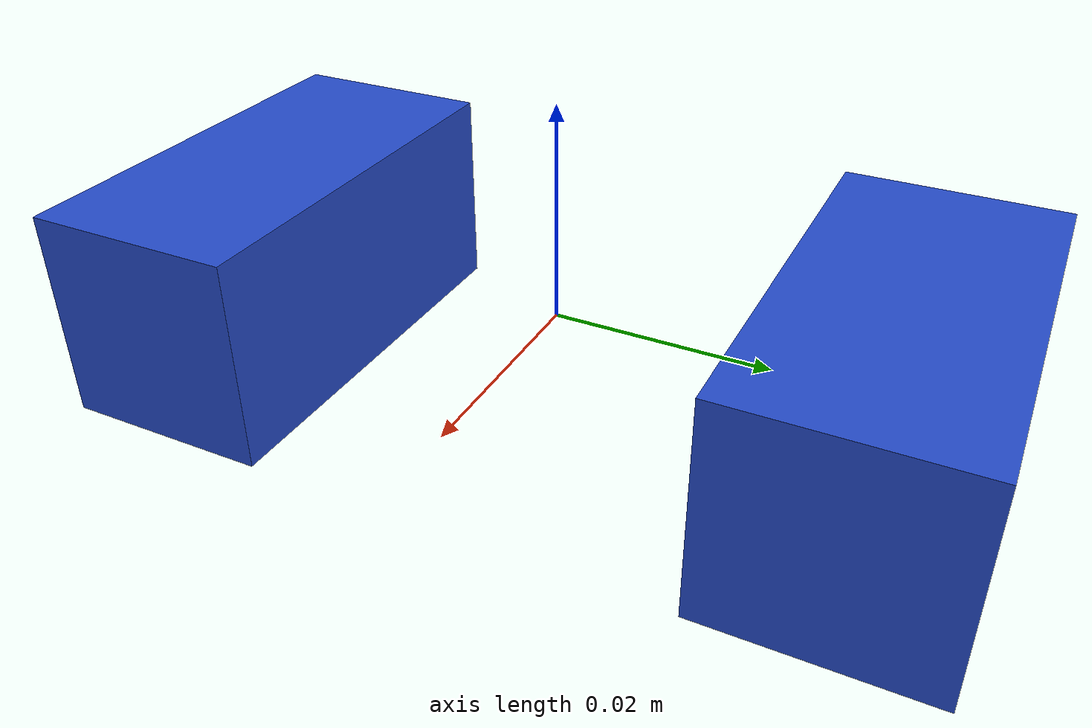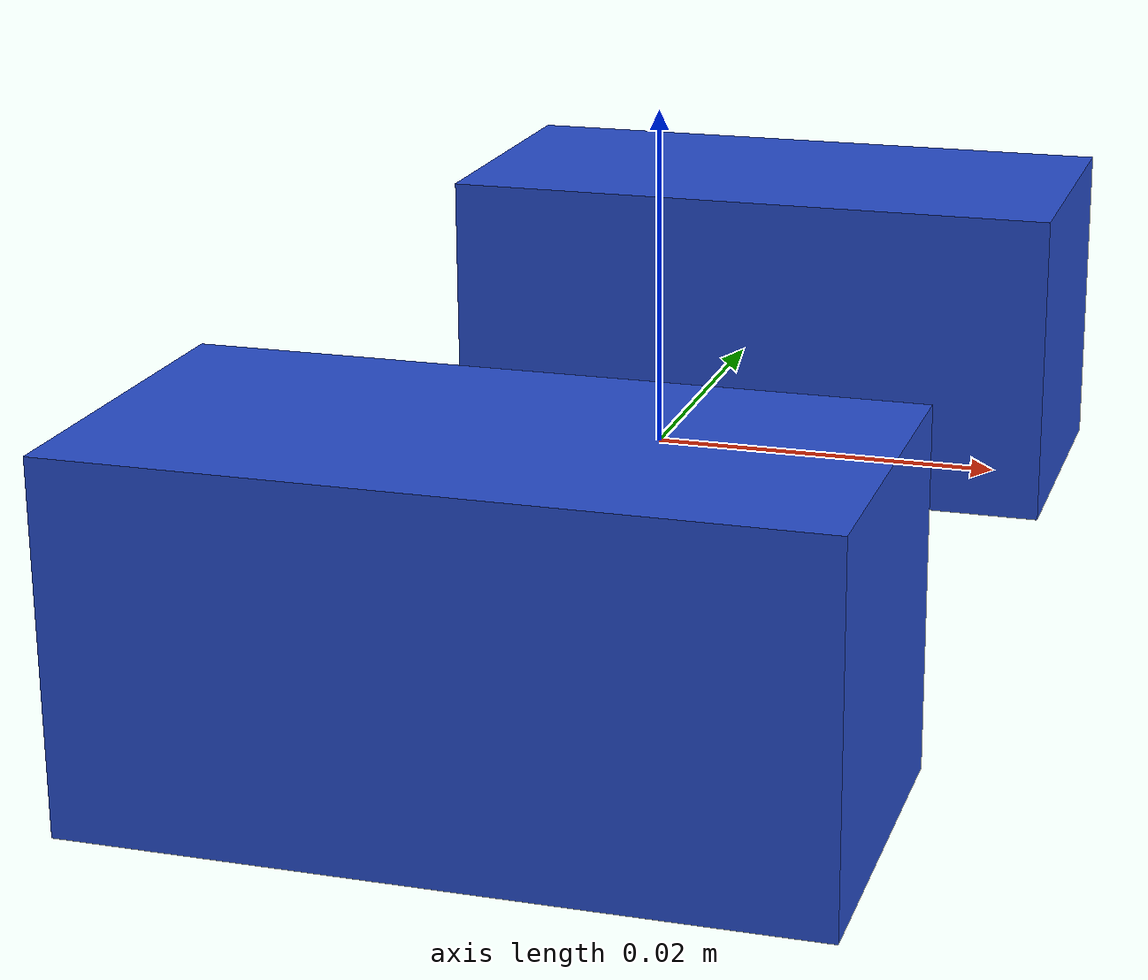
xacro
<?xml version="1.0"?>
<robot xmlns:xacro="http://www.ros.org/wiki/xacro" name="duo_camera">
	<xacro:property name="cameralen" value="0.04" />
	<xacro:property name="camerawid" value="0.02" />
	<xacro:property name="camerahgt" value="0.02" />
	<xacro:property name="cameramass" value="0.05" />
	<xacro:property name="duo_width" value="0.06" />

	<xacro:include filename="duo_cam.materials" />

	<link name="base_link">
	</link>

	<xacro:macro name="camera_geometry">
		<geometry>
			<box size="${cameralen} ${camerawid} ${camerahgt}" />
		</geometry>
	</xacro:macro>

	<xacro:macro name="camera_n_joint" params="prefix reflect">
		<link name="${prefix}_cam">
			<inertial>
				<mass value="${cameramass}" />
				<inertia
					ixx="${cameramass * ((camerahgt*camerahgt)+(cameralen*cameralen)) / 12}"
					iyy="${cameramass * ((camerahgt*camerahgt)+(camerawid*camerawid)) / 12}"
					izz="${cameramass * ((cameralen*cameralen)+(camerawid*camerawid)) / 12}"
					ixy="0"
					ixz="0"
					iyz="0"
				/>
			</inertial>
			<visual>
				<xacro:camera_geometry />
				<material name="blue" />
			</visual>
			<collision>
				<xacro:camera_geometry />
			</collision>
		</link>
		<joint name="${prefix}_cam_joint" type="fixed">
			<origin xyz="0 ${reflect * duo_width / 2} 0" />
			<parent link="base_link" />
			<child link="${prefix}_cam" />
		</joint>
	</xacro:macro>

	<xacro:camera_n_joint prefix="left" reflect="1" />
	<xacro:camera_n_joint prefix="right" reflect="-1" />

	<xacro:include filename="duo_cam.gazebo" />
</robot>
